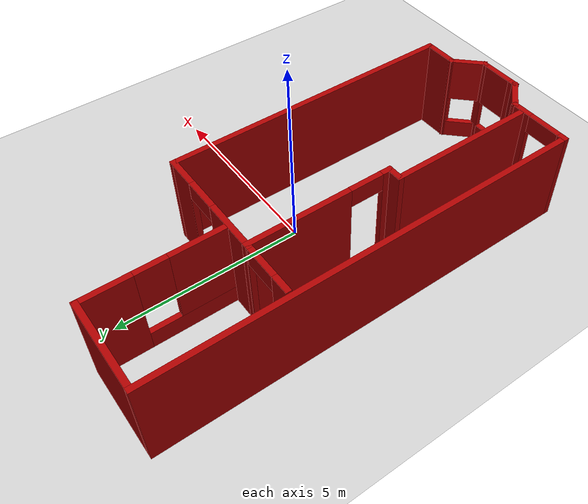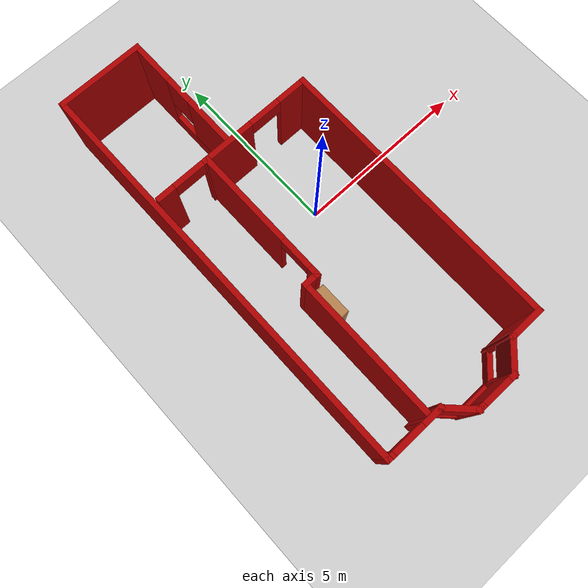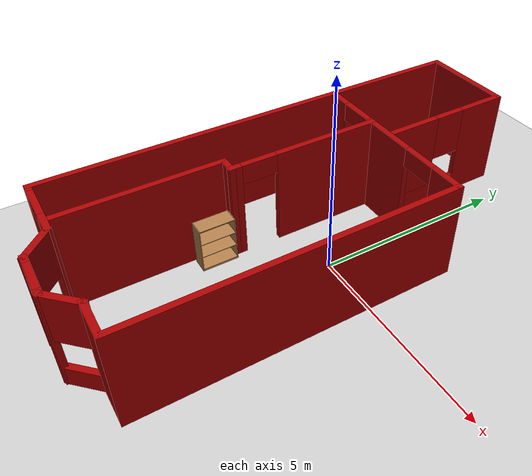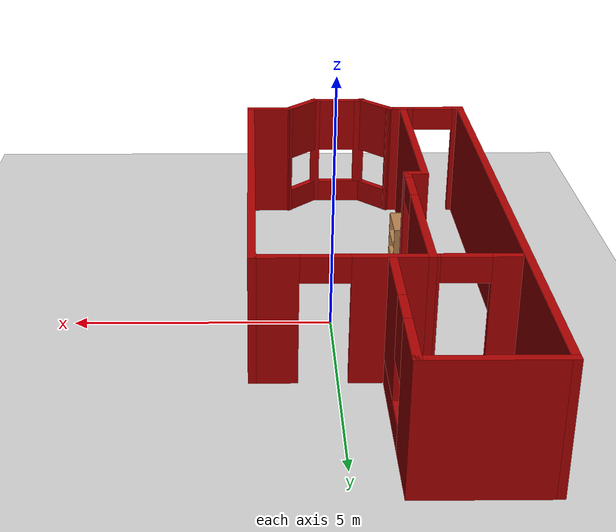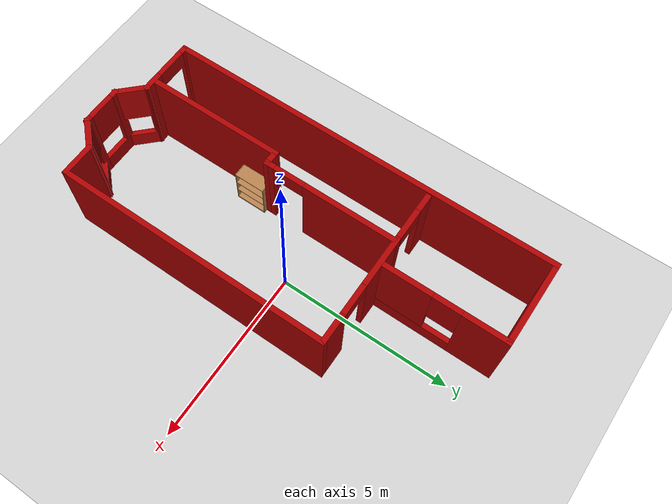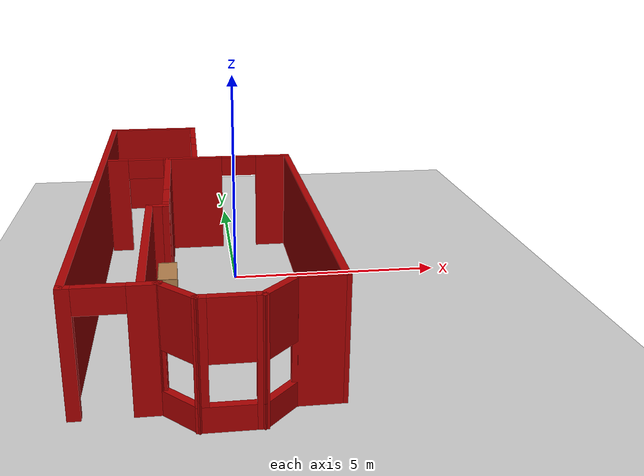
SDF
<sdf version="1.6">
 <world name="default">
  <model name="ground_plane">
   <static>1</static>
   <link name="link">
    <collision name="collision">
     <geometry><plane><normal>0 0 1</normal><size>100 100</size></plane></geometry>
     <surface><friction><ode><mu>100</mu><mu2>50</mu2></ode></friction></surface>
    </collision>
    <visual name="visual">
     <cast_shadows>0</cast_shadows>
     <geometry><plane><normal>0 0 1</normal><size>100 100</size></plane></geometry>
     <material>
      <script><uri>file://media/materials/scripts/gazebo.material</uri><name>Gazebo/Grey</name></script>
     </material>
    </visual>
   </link>
  </model>
  <light name="sun" type="directional">
   <pose>0 0 10 0 -0 0</pose>
   <diffuse>0.8 0.8 0.8 1</diffuse>
   <specular>0.2 0.2 0.2 1</specular>
   <attenuation>
    <range>1000</range>
    <constant>0.9</constant>
    <linear>0.01</linear>
    <quadratic>0.001</quadratic>
   </attenuation>
   <direction>-0.5 0.1 -0.9</direction>
  </light>
  <model name="building_downstairs">
   <pose>-0.843854 -0.275175 0 0 -0 0</pose>
   <link name="Wall_0">
    <collision name="Wall_0_Collision">
     <geometry><box><size>8 0.15 2.5</size></box></geometry>
     <pose>0 0 1.25 0 -0 0</pose>
    </collision>
    <visual name="Wall_0_Visual">
     <pose>0 0 1.25 0 -0 0</pose>
     <geometry><box><size>8 0.15 2.5</size></box></geometry>
     <material>
      <script><uri>file://media/materials/scripts/gazebo.material</uri><name>Gazebo/Grey</name></script>
      <ambient>0.666667 0 0 1</ambient>
     </material>
     <meta><layer>0</layer></meta>
    </visual>
    <pose>2.38842 -1.43226 0 0 0 -1.5708</pose>
   </link>
   <link name="Wall_1">
    <collision name="Wall_1_Collision">
     <geometry><box><size>1.01154 0.15 2.5</size></box></geometry>
     <pose>0 0 1.25 0 -0 0</pose>
    </collision>
    <visual name="Wall_1_Visual">
     <pose>0 0 1.25 0 -0 0</pose>
     <geometry><box><size>1.01154 0.15 2.5</size></box></geometry>
     <material>
      <script><uri>file://media/materials/scripts/gazebo.material</uri><name>Gazebo/Grey</name></script>
      <ambient>0.666667 0 0 1</ambient>
     </material>
     <meta><layer>0</layer></meta>
    </visual>
    <pose>1.94443 -5.3581 0 0 0 -3.13963</pose>
   </link>
   <link name="Wall_11">
    <pose>0.088421 2.49274 0 0 -0 3.14159</pose>
    <visual name="Wall_11_Visual_0">
     <pose>-1.92602 0 1.25 0 -0 0</pose>
     <geometry><box><size>0.897963 0.15 2.5</size></box></geometry>
     <material>
      <script><uri>file://media/materials/scripts/gazebo.material</uri><name>Gazebo/Grey</name></script>
      <ambient>0.666667 0 0 1</ambient>
     </material>
     <meta><layer>0</layer></meta>
    </visual>
    <collision name="Wall_11_Collision_0">
     <geometry><box><size>0.897963 0.15 2.5</size></box></geometry>
     <pose>-1.92602 0 1.25 0 -0 0</pose>
    </collision>
    <visual name="Wall_11_Visual_1">
     <pose>0.186164 0 1.25 0 -0 0</pose>
     <geometry><box><size>1.5264 0.15 2.5</size></box></geometry>
     <material>
      <script><uri>file://media/materials/scripts/gazebo.material</uri><name>Gazebo/Grey</name></script>
      <ambient>0.666667 0 0 1</ambient>
     </material>
     <meta><layer>0</layer></meta>
    </visual>
    <collision name="Wall_11_Collision_1">
     <geometry><box><size>1.5264 0.15 2.5</size></box></geometry>
     <pose>0.186164 0 1.25 0 -0 0</pose>
    </collision>
    <visual name="Wall_11_Visual_2">
     <pose>2.11218 0 1.25 0 -0 0</pose>
     <geometry><box><size>0.525634 0.15 2.5</size></box></geometry>
     <material>
      <script><uri>file://media/materials/scripts/gazebo.material</uri><name>Gazebo/Grey</name></script>
      <ambient>0.666667 0 0 1</ambient>
     </material>
     <meta><layer>0</layer></meta>
    </visual>
    <collision name="Wall_11_Collision_2">
     <geometry><box><size>0.525634 0.15 2.5</size></box></geometry>
     <pose>2.11218 0 1.25 0 -0 0</pose>
    </collision>
    <visual name="Wall_11_Visual_3">
     <pose>-1.02704 0 2.25 0 -0 0</pose>
     <geometry><box><size>0.9 0.15 0.5</size></box></geometry>
     <material>
      <script><uri>file://media/materials/scripts/gazebo.material</uri><name>Gazebo/Grey</name></script>
      <ambient>0.666667 0 0 1</ambient>
     </material>
     <meta><layer>0</layer></meta>
    </visual>
    <collision name="Wall_11_Collision_3">
     <geometry><box><size>0.9 0.15 0.5</size></box></geometry>
     <pose>-1.02704 0 2.25 0 -0 0</pose>
    </collision>
    <visual name="Wall_11_Visual_4">
     <pose>1.39937 0 2.25 0 -0 0</pose>
     <geometry><box><size>0.9 0.15 0.5</size></box></geometry>
     <material>
      <script><uri>file://media/materials/scripts/gazebo.material</uri><name>Gazebo/Grey</name></script>
      <ambient>0.666667 0 0 1</ambient>
     </material>
     <meta><layer>0</layer></meta>
    </visual>
    <collision name="Wall_11_Collision_4">
     <geometry><box><size>0.9 0.15 0.5</size></box></geometry>
     <pose>1.39937 0 2.25 0 -0 0</pose>
    </collision>
   </link>
   <link name="Wall_13">
    <pose>-0.73199 0.568977 0 0 0 -1.5708</pose>
    <visual name="Wall_13_Visual_0">
     <pose>-0.607949 0 1.25 0 -0 0</pose>
     <geometry><box><size>2.7841 0.15 2.5</size></box></geometry>
     <material>
      <script><uri>file://media/materials/scripts/gazebo.material</uri><name>Gazebo/Grey</name></script>
      <ambient>0.666667 0 0 1</ambient>
     </material>
     <meta><layer>0</layer></meta>
    </visual>
    <collision name="Wall_13_Collision_0">
     <geometry><box><size>2.7841 0.15 2.5</size></box></geometry>
     <pose>-0.607949 0 1.25 0 -0 0</pose>
    </collision>
    <visual name="Wall_13_Visual_1">
     <pose>1.84205 0 1.25 0 -0 0</pose>
     <geometry><box><size>0.315898 0.15 2.5</size></box></geometry>
     <material>
      <script><uri>file://media/materials/scripts/gazebo.material</uri><name>Gazebo/Grey</name></script>
      <ambient>0.666667 0 0 1</ambient>
     </material>
     <meta><layer>0</layer></meta>
    </visual>
    <collision name="Wall_13_Collision_1">
     <geometry><box><size>0.315898 0.15 2.5</size></box></geometry>
     <pose>1.84205 0 1.25 0 -0 0</pose>
    </collision>
    <visual name="Wall_13_Visual_2">
     <pose>1.2341 0 2.25 0 -0 0</pose>
     <geometry><box><size>0.9 0.15 0.5</size></box></geometry>
     <material>
      <script><uri>file://media/materials/scripts/gazebo.material</uri><name>Gazebo/Grey</name></script>
      <ambient>0.666667 0 0 1</ambient>
     </material>
     <meta><layer>0</layer></meta>
    </visual>
    <collision name="Wall_13_Collision_2">
     <geometry><box><size>0.9 0.15 0.5</size></box></geometry>
     <pose>1.2341 0 2.25 0 -0 0</pose>
    </collision>
   </link>
   <link name="Wall_14">
    <collision name="Wall_14_Collision">
     <geometry><box><size>0.5 0.15 2.5</size></box></geometry>
     <pose>0 0 1.25 0 -0 0</pose>
    </collision>
    <visual name="Wall_14_Visual">
     <pose>0 0 1.25 0 -0 0</pose>
     <geometry><box><size>0.5 0.15 2.5</size></box></geometry>
     <material>
      <script><uri>file://media/materials/scripts/gazebo.material</uri><name>Gazebo/Grey</name></script>
      <ambient>0.666667 0 0 1</ambient>
     </material>
     <meta><layer>0</layer></meta>
    </visual>
    <pose>-0.90699 -1.35602 0 0 -0 3.14159</pose>
   </link>
   <link name="Wall_15">
    <collision name="Wall_15_Collision">
     <geometry><box><size>4 0.15 2.5</size></box></geometry>
     <pose>0 0 1.25 0 -0 0</pose>
    </collision>
    <visual name="Wall_15_Visual">
     <pose>0 0 1.25 0 -0 0</pose>
     <geometry><box><size>4 0.15 2.5</size></box></geometry>
     <material>
      <script><uri>file://media/materials/scripts/gazebo.material</uri><name>Gazebo/Grey</name></script>
      <ambient>0.666667 0 0 1</ambient>
     </material>
     <meta><layer>0</layer></meta>
    </visual>
    <pose>-1.08199 -3.28102 0 0 0 -1.5708</pose>
   </link>
   <link name="Wall_2">
    <pose>1.21314 -5.65947 0 0 0 -2.35619</pose>
    <visual name="Wall_2_Visual_0">
     <pose>-0.446339 0 1.25 0 -0 0</pose>
     <geometry><box><size>0.107323 0.15 2.5</size></box></geometry>
     <material>
      <script><uri>file://media/materials/scripts/gazebo.material</uri><name>Gazebo/Grey</name></script>
      <ambient>0.666667 0 0 1</ambient>
     </material>
     <meta><layer>0</layer></meta>
    </visual>
    <collision name="Wall_2_Collision_0">
     <geometry><box><size>0.107323 0.15 2.5</size></box></geometry>
     <pose>-0.446339 0 1.25 0 -0 0</pose>
    </collision>
    <visual name="Wall_2_Visual_1">
     <pose>0.053661 0 0.25 0 -0 0</pose>
     <geometry><box><size>0.892677 0.15 0.5</size></box></geometry>
     <material>
      <script><uri>file://media/materials/scripts/gazebo.material</uri><name>Gazebo/Grey</name></script>
      <ambient>0.666667 0 0 1</ambient>
     </material>
     <meta><layer>0</layer></meta>
    </visual>
    <collision name="Wall_2_Collision_1">
     <geometry><box><size>0.892677 0.15 0.5</size></box></geometry>
     <pose>0.053661 0 0.25 0 -0 0</pose>
    </collision>
    <visual name="Wall_2_Visual_2">
     <pose>0.453661 0 1.5 0 -0 0</pose>
     <geometry><box><size>0.092677 0.15 2</size></box></geometry>
     <material>
      <script><uri>file://media/materials/scripts/gazebo.material</uri><name>Gazebo/Grey</name></script>
      <ambient>0.666667 0 0 1</ambient>
     </material>
     <meta><layer>0</layer></meta>
    </visual>
    <collision name="Wall_2_Collision_2">
     <geometry><box><size>0.092677 0.15 2</size></box></geometry>
     <pose>0.453661 0 1.5 0 -0 0</pose>
    </collision>
    <visual name="Wall_2_Visual_3">
     <pose>0.007323 0 1.9 0 -0 0</pose>
     <geometry><box><size>0.8 0.15 1.2</size></box></geometry>
     <material>
      <script><uri>file://media/materials/scripts/gazebo.material</uri><name>Gazebo/Grey</name></script>
      <ambient>0.666667 0 0 1</ambient>
     </material>
     <meta><layer>0</layer></meta>
    </visual>
    <collision name="Wall_2_Collision_3">
     <geometry><box><size>0.8 0.15 1.2</size></box></geometry>
     <pose>0.007323 0 1.9 0 -0 0</pose>
    </collision>
   </link>
   <link name="Wall_3">
    <pose>0.36262 -5.95999 0 0 -0 3.14159</pose>
    <visual name="Wall_3_Visual_0">
     <pose>-0.521836 0 1.25 0 -0 0</pose>
     <geometry><box><size>0.206328 0.15 2.5</size></box></geometry>
     <material>
      <script><uri>file://media/materials/scripts/gazebo.material</uri><name>Gazebo/Grey</name></script>
      <ambient>0.666667 0 0 1</ambient>
     </material>
     <meta><layer>0</layer></meta>
    </visual>
    <collision name="Wall_3_Collision_0">
     <geometry><box><size>0.206328 0.15 2.5</size></box></geometry>
     <pose>-0.521836 0 1.25 0 -0 0</pose>
    </collision>
    <visual name="Wall_3_Visual_1">
     <pose>0.103164 0 0.25 0 -0 0</pose>
     <geometry><box><size>1.04367 0.15 0.5</size></box></geometry>
     <material>
      <script><uri>file://media/materials/scripts/gazebo.material</uri><name>Gazebo/Grey</name></script>
      <ambient>0.666667 0 0 1</ambient>
     </material>
     <meta><layer>0</layer></meta>
    </visual>
    <collision name="Wall_3_Collision_1">
     <geometry><box><size>1.04367 0.15 0.5</size></box></geometry>
     <pose>0.103164 0 0.25 0 -0 0</pose>
    </collision>
    <visual name="Wall_3_Visual_2">
     <pose>0.503164 0 1.5 0 -0 0</pose>
     <geometry><box><size>0.243672 0.15 2</size></box></geometry>
     <material>
      <script><uri>file://media/materials/scripts/gazebo.material</uri><name>Gazebo/Grey</name></script>
      <ambient>0.666667 0 0 1</ambient>
     </material>
     <meta><layer>0</layer></meta>
    </visual>
    <collision name="Wall_3_Collision_2">
     <geometry><box><size>0.243672 0.15 2</size></box></geometry>
     <pose>0.503164 0 1.5 0 -0 0</pose>
    </collision>
    <visual name="Wall_3_Visual_3">
     <pose>-0.018672 0 1.9 0 -0 0</pose>
     <geometry><box><size>0.8 0.15 1.2</size></box></geometry>
     <material>
      <script><uri>file://media/materials/scripts/gazebo.material</uri><name>Gazebo/Grey</name></script>
      <ambient>0.666667 0 0 1</ambient>
     </material>
     <meta><layer>0</layer></meta>
    </visual>
    <collision name="Wall_3_Collision_3">
     <geometry><box><size>0.8 0.15 1.2</size></box></geometry>
     <pose>-0.018672 0 1.9 0 -0 0</pose>
    </collision>
   </link>
   <link name="Wall_4">
    <pose>-0.4879 -5.65947 0 0 -0 2.35619</pose>
    <visual name="Wall_4_Visual_0">
     <pose>-0.466865 0 1.25 0 -0 0</pose>
     <geometry><box><size>0.066271 0.15 2.5</size></box></geometry>
     <material>
      <script><uri>file://media/materials/scripts/gazebo.material</uri><name>Gazebo/Grey</name></script>
      <ambient>0.666667 0 0 1</ambient>
     </material>
     <meta><layer>0</layer></meta>
    </visual>
    <collision name="Wall_4_Collision_0">
     <geometry><box><size>0.066271 0.15 2.5</size></box></geometry>
     <pose>-0.466865 0 1.25 0 -0 0</pose>
    </collision>
    <visual name="Wall_4_Visual_1">
     <pose>0.033135 0 0.25 0 -0 0</pose>
     <geometry><box><size>0.933729 0.15 0.5</size></box></geometry>
     <material>
      <script><uri>file://media/materials/scripts/gazebo.material</uri><name>Gazebo/Grey</name></script>
      <ambient>0.666667 0 0 1</ambient>
     </material>
     <meta><layer>0</layer></meta>
    </visual>
    <collision name="Wall_4_Collision_1">
     <geometry><box><size>0.933729 0.15 0.5</size></box></geometry>
     <pose>0.033135 0 0.25 0 -0 0</pose>
    </collision>
    <visual name="Wall_4_Visual_2">
     <pose>0.433135 0 1.5 0 -0 0</pose>
     <geometry><box><size>0.133729 0.15 2</size></box></geometry>
     <material>
      <script><uri>file://media/materials/scripts/gazebo.material</uri><name>Gazebo/Grey</name></script>
      <ambient>0.666667 0 0 1</ambient>
     </material>
     <meta><layer>0</layer></meta>
    </visual>
    <collision name="Wall_4_Collision_2">
     <geometry><box><size>0.133729 0.15 2</size></box></geometry>
     <pose>0.433135 0 1.5 0 -0 0</pose>
    </collision>
    <visual name="Wall_4_Visual_3">
     <pose>-0.033729 0 1.9 0 -0 0</pose>
     <geometry><box><size>0.8 0.15 1.2</size></box></geometry>
     <material>
      <script><uri>file://media/materials/scripts/gazebo.material</uri><name>Gazebo/Grey</name></script>
      <ambient>0.666667 0 0 1</ambient>
     </material>
     <meta><layer>0</layer></meta>
    </visual>
    <collision name="Wall_4_Collision_3">
     <geometry><box><size>0.8 0.15 1.2</size></box></geometry>
     <pose>-0.033729 0 1.9 0 -0 0</pose>
    </collision>
   </link>
   <link name="Wall_5">
    <pose>-1.58842 -5.35895 0 0 -0 3.14159</pose>
    <visual name="Wall_5_Visual_0">
     <pose>-0.574229 0 1.25 0 -0 0</pose>
     <geometry><box><size>0.601543 0.15 2.5</size></box></geometry>
     <material>
      <script><uri>file://media/materials/scripts/gazebo.material</uri><name>Gazebo/Grey</name></script>
      <ambient>0.666667 0 0 1</ambient>
     </material>
     <meta><layer>0</layer></meta>
    </visual>
    <collision name="Wall_5_Collision_0">
     <geometry><box><size>0.601543 0.15 2.5</size></box></geometry>
     <pose>-0.574229 0 1.25 0 -0 0</pose>
    </collision>
    <visual name="Wall_5_Visual_1">
     <pose>0.750771 0 1.25 0 -0 0</pose>
     <geometry><box><size>0.248457 0.15 2.5</size></box></geometry>
     <material>
      <script><uri>file://media/materials/scripts/gazebo.material</uri><name>Gazebo/Grey</name></script>
      <ambient>0.666667 0 0 1</ambient>
     </material>
     <meta><layer>0</layer></meta>
    </visual>
    <collision name="Wall_5_Collision_1">
     <geometry><box><size>0.248457 0.15 2.5</size></box></geometry>
     <pose>0.750771 0 1.25 0 -0 0</pose>
    </collision>
    <visual name="Wall_5_Visual_2">
     <pose>0.176543 0 2.25 0 -0 0</pose>
     <geometry><box><size>0.9 0.15 0.5</size></box></geometry>
     <material>
      <script><uri>file://media/materials/scripts/gazebo.material</uri><name>Gazebo/Grey</name></script>
      <ambient>0.666667 0 0 1</ambient>
     </material>
     <meta><layer>0</layer></meta>
    </visual>
    <collision name="Wall_5_Collision_2">
     <geometry><box><size>0.9 0.15 0.5</size></box></geometry>
     <pose>0.176543 0 2.25 0 -0 0</pose>
    </collision>
   </link>
   <link name="Wall_6">
    <collision name="Wall_6_Collision">
     <geometry><box><size>11.5 0.15 2.5</size></box></geometry>
     <pose>0 0 1.25 0 -0 0</pose>
    </collision>
    <visual name="Wall_6_Visual">
     <pose>0 0 1.25 0 -0 0</pose>
     <geometry><box><size>11.5 0.15 2.5</size></box></geometry>
     <material>
      <script><uri>file://media/materials/scripts/gazebo.material</uri><name>Gazebo/Grey</name></script>
      <ambient>0.666667 0 0 1</ambient>
     </material>
     <meta><layer>0</layer></meta>
    </visual>
    <pose>-2.38842 0.316053 0 0 -0 1.5708</pose>
   </link>
   <link name="Wall_7">
    <collision name="Wall_7_Collision">
     <geometry><box><size>2.5 0.15 2.5</size></box></geometry>
     <pose>0 0 1.25 0 -0 0</pose>
    </collision>
    <visual name="Wall_7_Visual">
     <pose>0 0 1.25 0 -0 0</pose>
     <geometry><box><size>2.5 0.15 2.5</size></box></geometry>
     <material>
      <script><uri>file://media/materials/scripts/gazebo.material</uri><name>Gazebo/Grey</name></script>
      <ambient>0.666667 0 0 1</ambient>
     </material>
     <meta><layer>0</layer></meta>
    </visual>
    <pose>-1.21342 5.99105 0 0 -0 0</pose>
   </link>
   <link name="Wall_8">
    <pose>-0.03842 4.31605 0 0 0 -1.5708</pose>
    <visual name="Wall_8_Visual_0">
     <pose>-1.0977 0 1.25 0 -0 0</pose>
     <geometry><box><size>1.30459 0.15 2.5</size></box></geometry>
     <material>
      <script><uri>file://media/materials/scripts/gazebo.material</uri><name>Gazebo/Grey</name></script>
      <ambient>0.666667 0 0 1</ambient>
     </material>
     <meta><layer>0</layer></meta>
    </visual>
    <collision name="Wall_8_Collision_0">
     <geometry><box><size>1.30459 0.15 2.5</size></box></geometry>
     <pose>-1.0977 0 1.25 0 -0 0</pose>
    </collision>
    <visual name="Wall_8_Visual_1">
     <pose>0.652295 0 0.25 0 -0 0</pose>
     <geometry><box><size>2.19541 0.15 0.5</size></box></geometry>
     <material>
      <script><uri>file://media/materials/scripts/gazebo.material</uri><name>Gazebo/Grey</name></script>
      <ambient>0.666667 0 0 1</ambient>
     </material>
     <meta><layer>0</layer></meta>
    </visual>
    <collision name="Wall_8_Collision_1">
     <geometry><box><size>2.19541 0.15 0.5</size></box></geometry>
     <pose>0.652295 0 0.25 0 -0 0</pose>
    </collision>
    <visual name="Wall_8_Visual_2">
     <pose>1.05229 0 1.5 0 -0 0</pose>
     <geometry><box><size>1.39541 0.15 2</size></box></geometry>
     <material>
      <script><uri>file://media/materials/scripts/gazebo.material</uri><name>Gazebo/Grey</name></script>
      <ambient>0.666667 0 0 1</ambient>
     </material>
     <meta><layer>0</layer></meta>
    </visual>
    <collision name="Wall_8_Collision_2">
     <geometry><box><size>1.39541 0.15 2</size></box></geometry>
     <pose>1.05229 0 1.5 0 -0 0</pose>
    </collision>
    <visual name="Wall_8_Visual_3">
     <pose>-0.045409 0 1.9 0 -0 0</pose>
     <geometry><box><size>0.8 0.15 1.2</size></box></geometry>
     <material>
      <script><uri>file://media/materials/scripts/gazebo.material</uri><name>Gazebo/Grey</name></script>
      <ambient>0.666667 0 0 1</ambient>
     </material>
     <meta><layer>0</layer></meta>
    </visual>
    <collision name="Wall_8_Collision_3">
     <geometry><box><size>0.8 0.15 1.2</size></box></geometry>
     <pose>-0.045409 0 1.9 0 -0 0</pose>
    </collision>
   </link>
   <static>1</static>
  </model>
  <gravity>0 0 -9.8</gravity>
  <magnetic_field>6e-06 2.3e-05 -4.2e-05</magnetic_field>
  <atmosphere type="adiabatic"/>
  <physics name="default_physics" default="0" type="ode">
   <max_step_size>0.001</max_step_size>
   <real_time_factor>1</real_time_factor>
   <real_time_update_rate>1000</real_time_update_rate>
  </physics>
  <scene><ambient>0.4 0.4 0.4 1</ambient><background>0.7 0.7 0.7 1</background><shadows>1</shadows></scene>
  <spherical_coordinates>
   <surface_model>EARTH_WGS84</surface_model>
   <latitude_deg>0</latitude_deg>
   <longitude_deg>0</longitude_deg>
   <elevation>0</elevation>
   <heading_deg>0</heading_deg>
  </spherical_coordinates>
  <model name="bookshelf">
   <static>1</static>
   <link name="link">
    <inertial><mass>1</mass></inertial>
    <collision name="back">
     <pose>0 0.005 0.6 0 -0 0</pose>
     <geometry><box><size>0.9 0.01 1.2</size></box></geometry>
    </collision>
    <visual name="visual1">
     <pose>0 0.005 0.6 0 -0 0</pose>
     <geometry><box><size>0.9 0.01 1.2</size></box></geometry>
     <material>
      <script><uri>file://media/materials/scripts/gazebo.material</uri><name>Gazebo/Wood</name></script>
     </material>
    </visual>
    <collision name="left_side">
     <pose>0.45 -0.195 0.6 0 -0 0</pose>
     <geometry><box><size>0.02 0.4 1.2</size></box></geometry>
    </collision>
    <visual name="visual2">
     <pose>0.45 -0.195 0.6 0 -0 0</pose>
     <geometry><box><size>0.02 0.4 1.2</size></box></geometry>
     <material>
      <script><uri>file://media/materials/scripts/gazebo.material</uri><name>Gazebo/Wood</name></script>
     </material>
    </visual>
    <collision name="right_side">
     <pose>-0.45 -0.195 0.6 0 -0 0</pose>
     <geometry><box><size>0.02 0.4 1.2</size></box></geometry>
    </collision>
    <visual name="visual3">
     <pose>-0.45 -0.195 0.6 0 -0 0</pose>
     <geometry><box><size>0.02 0.4 1.2</size></box></geometry>
     <material>
      <script><uri>file://media/materials/scripts/gazebo.material</uri><name>Gazebo/Wood</name></script>
     </material>
    </visual>
    <collision name="bottom">
     <pose>0 -0.195 0.03 0 -0 0</pose>
     <geometry><box><size>0.88 0.4 0.06</size></box></geometry>
    </collision>
    <visual name="visual4">
     <pose>0 -0.195 0.03 0 -0 0</pose>
     <geometry><box><size>0.88 0.4 0.06</size></box></geometry>
     <material>
      <script><uri>file://media/materials/scripts/gazebo.material</uri><name>Gazebo/Wood</name></script>
     </material>
    </visual>
    <collision name="top">
     <pose>0 -0.195 1.19 0 -0 0</pose>
     <geometry><box><size>0.88 0.4 0.02</size></box></geometry>
    </collision>
    <visual name="visual5">
     <pose>0 -0.195 1.19 0 -0 0</pose>
     <geometry><box><size>0.88 0.4 0.02</size></box></geometry>
     <material>
      <script><uri>file://media/materials/scripts/gazebo.material</uri><name>Gazebo/Wood</name></script>
     </material>
    </visual>
    <collision name="low_shelf">
     <pose>0 -0.195 0.43 0 -0 0</pose>
     <geometry><box><size>0.88 0.4 0.02</size></box></geometry>
    </collision>
    <visual name="visual6">
     <pose>0 -0.195 0.43 0 -0 0</pose>
     <geometry><box><size>0.88 0.4 0.02</size></box></geometry>
     <material>
      <script><uri>file://media/materials/scripts/gazebo.material</uri><name>Gazebo/Wood</name></script>
     </material>
    </visual>
    <collision name="high_shelf">
     <pose>0 -0.195 0.8 0 -0 0</pose>
     <geometry><box><size>0.88 0.4 0.02</size></box></geometry>
    </collision>
    <visual name="visual7">
     <pose>0 -0.195 0.8 0 -0 0</pose>
     <geometry><box><size>0.88 0.4 0.02</size></box></geometry>
     <material>
      <script><uri>file://media/materials/scripts/gazebo.material</uri><name>Gazebo/Wood</name></script>
     </material>
    </visual>
   </link>
   <pose>-1.77926 -2.16724 0 0 -0 1.5708</pose>
  </model>
 </world>
</sdf>
